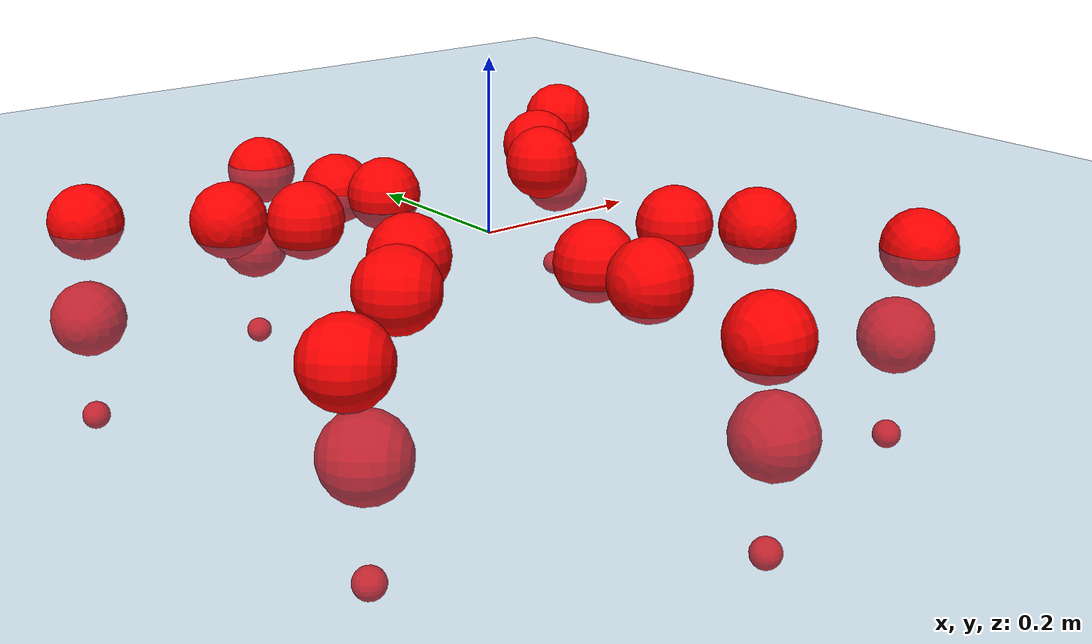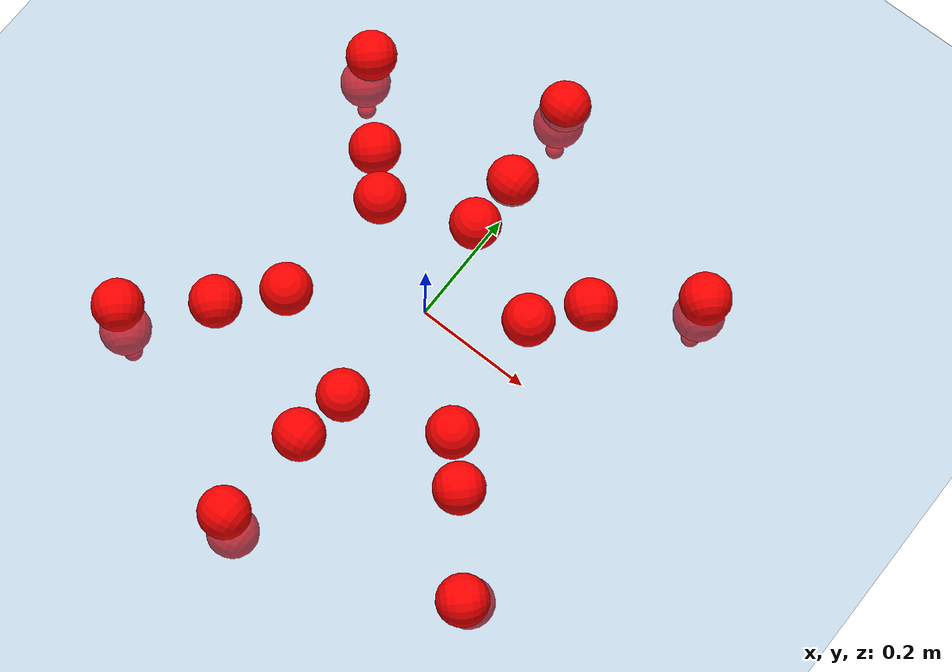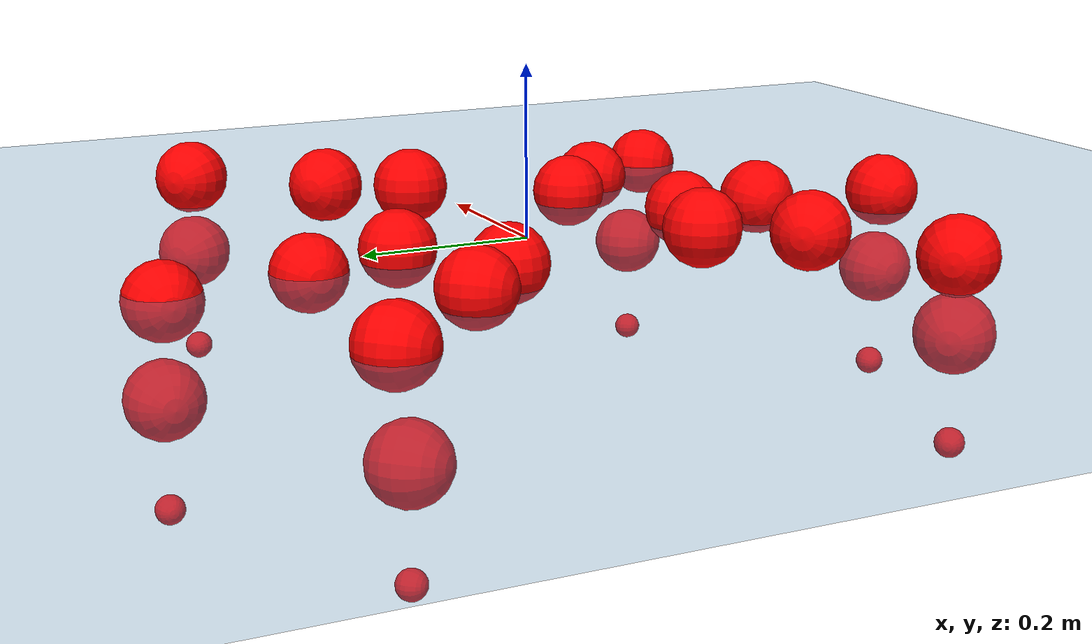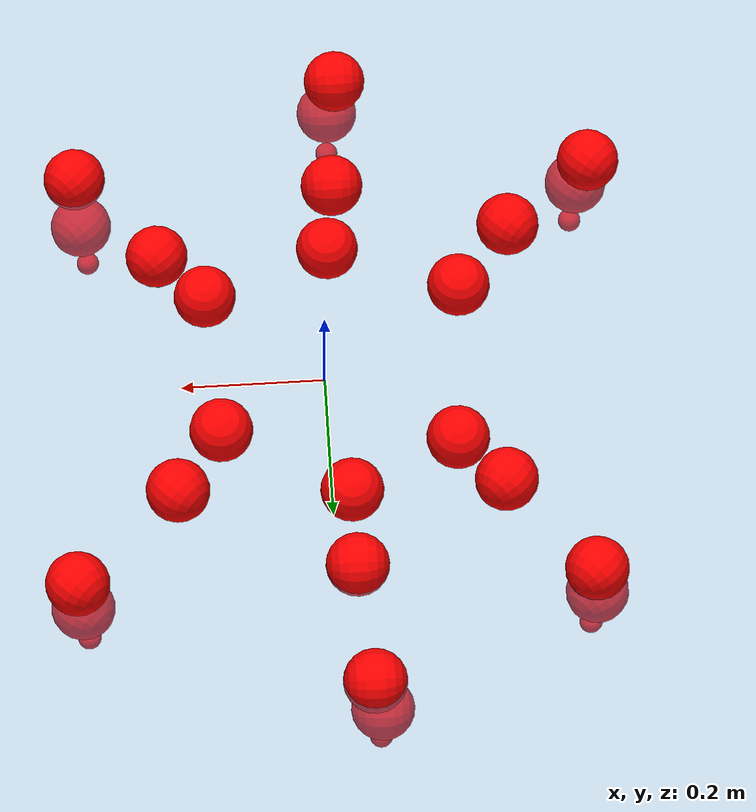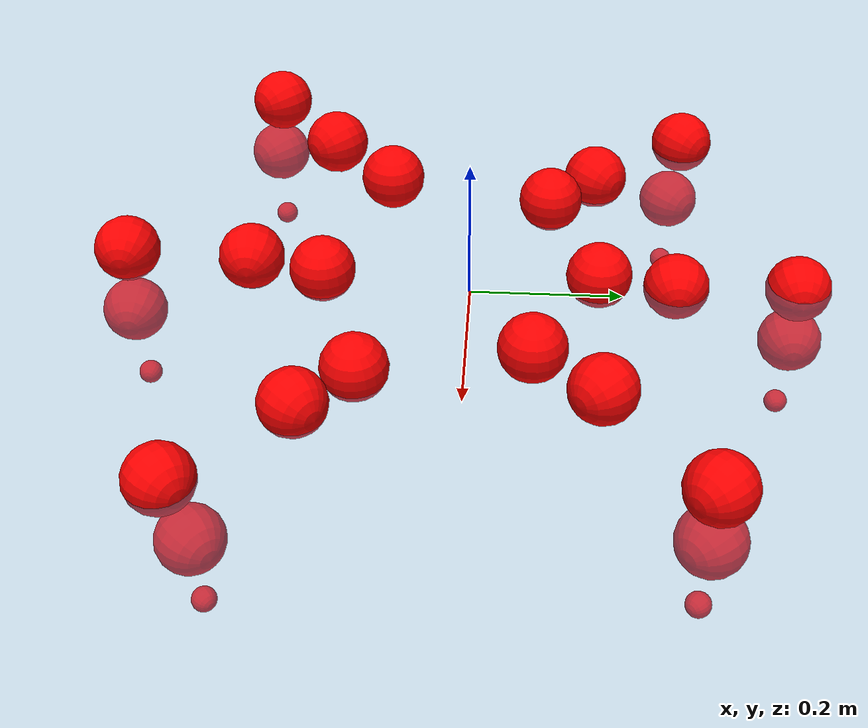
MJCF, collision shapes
<mujoco model="Golem">
  <compiler angle="radian" assetdir="assets" balanceinertia="true" inertiafromgeom="false"/>

  <option timestep="0.005" density="1.2" viscosity="2e-05"/>

  <size nkey="1"/>

  <visual>
    <quality shadowsize="8192"/>
    <map shadowclip="0.5"/>
  </visual>

  <default>
    <default class="/">
      <joint armature="0.01" damping="0.01" frictionloss="0.01"/>
      <geom contype="0" conaffinity="0" group="1" solref="-1000 -80"/>
      <site size="0.01 0.005 0.005" group="5"/>
      <general forcelimited="true" biastype="affine" gainprm="25" biasprm="0 -25 -0.5"/>
      <default class="visual">
        <geom type="mesh" group="2"/>
      </default>
      <default class="collision">
        <geom group="3"/>
      </default>
      <default class="foot">
        <geom size="0.01 0 0" condim="6" group="4" priority="1" solimp="0.015 1 0.01"/>
      </default>
      <default class="reward_collision_sphere">
        <geom group="5" rgba="1 0 0 1"/>
      </default>
    </default>
  </default>

  <asset>
    <texture type="skybox" colorspace="auto" name="//unnamed_texture_0" builtin="gradient" rgb1="0.95 0.95 0.95" rgb2="0.95 0.95 0.95" width="100" height="600"/>
    <texture type="2d" colorspace="auto" name="texplane" builtin="checker" rgb1="0.345 0.575 0.748" rgb2="0.345 0.575 0.748" markrgb="1 1 1" width="512" height="512"/>
    <material name="MatPlane" class="/" texture="texplane" texuniform="true" texrepeat="2 2" specular="0.9"/>
    <mesh name="body" class="/" file="body.stl" scale="0.001 0.001 0.001"/>
    <mesh name="coxa" class="/" file="coxa.stl" scale="0.001 0.001 0.001"/>
    <mesh name="femur" class="/" file="femur.stl" scale="0.001 0.001 0.001"/>
    <mesh name="tibia" class="/" file="tibia.stl" scale="0.001 0.001 0.001"/>
    <mesh name="tarsus" class="/" file="tarsus.stl" scale="0.001 0.001 0.001"/>
  </asset>

  <worldbody>
    <geom name="floor" class="/" size="100 100 0.125" type="plane" group="0" material="MatPlane"/>
    <light name="toplight_shadow" class="/" pos="0 0 5" dir="0.0990148 0.0990148 -0.990148" type="directional" ambient="0.04 0.04 0.04" diffuse="0.55 0.55 0.55" specular="0.12 0.12 0.12"/>
    <light name="toplight_fill" class="/" pos="0 0 5" dir="0.0990148 0.0990148 -0.990148" type="directional" castshadow="false" ambient="0.04 0.04 0.04" diffuse="0.3 0.3 0.3" specular="0.08 0.08 0.08"/>
    <body name="trunk" pos="-0.0151676 -0.0100175 -0.00933985" quat="1 -0.000135407 7.73112e-05 -0.000161566">
      <inertial pos="-0.00567157 -0.00445606 -0.0045477" quat="0.99998 0.00247492 -0.00563547 0.00162035" mass="5.01252" diaginertia="0.0250391 0.110163 0.000494988"/>
      <joint name="//unnamed_joint_0" type="free"/>
      <geom name="//unnamed_geom_1" class="/" pos="0 0 0.0352039" quat="1 0 0 0" type="mesh" rgba="0.9 0.9 0.9 1" mesh="body"/>
      <site name="imu" class="/" pos="0.0763575 -0.0690505 0.0242722" size="0.010957"/>
      <camera name="track" class="/" pos="0 -3.20155 0" quat="0.707107 0.707107 0 0" mode="trackcom"/>
      <camera name="ego_camera" class="/" pos="0.147713 0 0.0550061" quat="-0.5 -0.5 0.5 0.5"/>
      <body name="coxa_RR" pos="-0.202819 -0.131863 0.0504974" quat="0.382624 5.14779e-05 5.87122e-05 -0.923904">
        <inertial pos="0.000205085 0.015874 0.00799963" quat="0.998359 -0.0109637 -0.0512728 0.0230369" mass="0.297137" diaginertia="0.0203675 0.113333 0.00054657"/>
        <joint name="coxa_joint_RR" class="/" pos="0 0 0" axis="-0.0143543 0.0381612 -0.999168" stiffness="0.0693208" range="-3.14939 3.13561" armature="0.0175328" damping="0.0423976" frictionloss="0.010733"/>
        <geom name="//unnamed_geom_2" class="/" type="mesh" rgba="0.2 0.2 0.2 1" mesh="coxa"/>
        <geom name="//unnamed_geom_3" class="reward_collision_sphere" size="0.0438279" pos="-0.0340877 0 0"/>
        <body name="femur_RR" pos="0.0821299 0.0088904 0.00387236" quat="0.500004 -0.499955 0.499968 0.500073">
          <inertial pos="0.00865741 0.0073842 0.000955606" quat="0.999502 0.0109387 0.0295132 0.0022496" mass="0.261399" diaginertia="0.019088 0.0969186 0.000397337"/>
          <joint name="femur_joint_RR" class="/" pos="0 0 0" axis="-0.0180468 -0.0233842 -0.999564" stiffness="0.0720086" range="-2.86585 3.36492" armature="0.0139972" damping="0.00951107" frictionloss="0.00379201"/>
          <geom name="//unnamed_geom_4" class="/" type="mesh" rgba="0.9 0.9 0.9 1" mesh="femur"/>
          <geom name="//unnamed_geom_5" class="reward_collision_sphere" size="0.0438279"/>
          <body name="tibia_RR" pos="0.0108505 -0.158288 -0.0160967" quat="-0.00247185 0.999969 -0.00595502 0.0044544">
            <inertial pos="0.0137164 0.00459414 0.000691189" quat="0.999984 0.000372377 0.00418947 -0.00387922" mass="0.250524" diaginertia="0.0221001 0.127014 0.000641235"/>
            <joint name="tibia_joint_RR" class="/" pos="0 0 0" axis="0.0304728 -0.0602673 0.997717" stiffness="0.00298124" range="-3.30349 2.93305" armature="0.0131356" damping="0.0243663" frictionloss="0.0108838"/>
            <geom name="//unnamed_geom_6" class="/" type="mesh" rgba="0.2 0.2 0.2 1" mesh="tibia"/>
            <geom name="//unnamed_geom_7" class="reward_collision_sphere" size="0.0438279"/>
            <body name="tarsus_RR" pos="0.0874209 -0.00260823 -0.0132623" quat="1 0.000148301 -3.89278e-05 -0.00034711">
              <inertial pos="0.0546231 0.000547902 -0.00849864" quat="0.47929 0.506402 0.496804 0.516745" mass="0.267198" diaginertia="0.0174215 0.0932203 0.000515322"/>
              <joint name="tarsus_joint_RR" class="/" pos="0 0 0" axis="0.00191786 -0.000483658 0.999998" stiffness="0.00034026" range="-2.8674 2.92559" armature="0.0141164" damping="0.0232703" frictionloss="0.0157025"/>
              <geom name="//unnamed_geom_8" class="/" type="mesh" rgba="0.9 0.9 0.9 1" mesh="tarsus"/>
              <geom name="foot_1" class="foot" size="0.0110731" pos="0.127261 0 0" quat="0 -0.707107 0 0.707107"/>
              <geom name="//unnamed_geom_10" class="reward_collision_sphere" size="0.0438279"/>
              <geom name="//unnamed_geom_11" class="reward_collision_sphere" size="0.0164354" pos="0.122147 0 0"/>
              <site name="foot_1" class="foot" pos="0.127261 0 0" quat="0 -0.707107 0 0.707107" size="0.010957"/>
            </body>
          </body>
        </body>
      </body>
      <body name="coxa_RM" pos="0.00104682 -0.220061 0.0287532" quat="0.710252 0.000392661 -0.00274722 -0.703942">
        <inertial pos="-0.0117013 0.000397107 0.00841699" quat="0.999134 0.0283427 0.00765647 -0.029482" mass="0.287201" diaginertia="0.0209419 0.12448 0.000430699"/>
        <joint name="coxa_joint_RM" class="/" pos="0 0 0" axis="-0.00934174 -0.0225221 -0.999703" range="-2.99393 3.04945" armature="0.0105904" damping="0.0640845" frictionloss="0.0202463"/>
        <geom name="//unnamed_geom_12" class="/" type="mesh" rgba="0.2 0.2 0.2 1" mesh="coxa"/>
        <geom name="//unnamed_geom_13" class="reward_collision_sphere" size="0.0438279" pos="-0.0340877 0 0"/>
        <body name="femur_RM" pos="0.0614606 -0.0131014 0.00665009" quat="0.495773 -0.496877 0.503253 0.504043">
          <inertial pos="-0.00522155 0.00776328 -0.000741397" quat="0.999394 -0.0117903 0.0324545 0.00448183" mass="0.214945" diaginertia="0.0152559 0.097686 0.000402362"/>
          <joint name="femur_joint_RM" class="/" pos="0 0 0" axis="-0.0492663 0.00943807 -0.998741" range="-3.19186 3.12843" armature="0.0156508" damping="0" frictionloss="0.011349"/>
          <geom name="//unnamed_geom_14" class="/" type="mesh" rgba="0.9 0.9 0.9 1" mesh="femur"/>
          <geom name="//unnamed_geom_15" class="reward_collision_sphere" size="0.0438279"/>
          <body name="tibia_RM" pos="0.00308878 -0.171423 -0.0156463" quat="-0.000288146 1 0.000325119 -0.000697714">
            <inertial pos="-0.0110475 0.0155994 -0.000996435" quat="0.997551 0.0535258 0.0401506 -0.0203567" mass="0.335705" diaginertia="0.0208076 0.0915722 0.000575805"/>
            <joint name="tibia_joint_RM" class="/" pos="0 0 0" axis="-0.00342522 0.00231004 0.999991" range="-2.85908 2.80152" armature="0.011786" damping="0.0124542" frictionloss="0.00812881"/>
            <geom name="//unnamed_geom_16" class="/" type="mesh" rgba="0.2 0.2 0.2 1" mesh="tibia"/>
            <geom name="//unnamed_geom_17" class="reward_collision_sphere" size="0.0438279"/>
            <body name="tarsus_RM" pos="0.0998121 0.00444783 -0.0107557" quat="1 0.000138371 -0.000111093 2.84475e-05">
              <inertial pos="0.0633368 0.0108935 -0.0120303" quat="0.553543 0.464915 0.516244 0.459278" mass="0.21003" diaginertia="0.021956 0.117058 0.000575396"/>
              <joint name="tarsus_joint_RM" class="/" pos="0 0 0" axis="0.00862288 -0.00529023 0.999949" stiffness="0.0563056" range="-3.35037 3.25656" armature="0.00650179" damping="0.00711933" frictionloss="0.0111276"/>
              <geom name="//unnamed_geom_18" class="/" type="mesh" rgba="0.9 0.9 0.9 1" mesh="tarsus"/>
              <geom name="foot_2" class="foot" size="0.00861889" pos="0.127261 0 0" quat="0 -0.707107 0 0.707107"/>
              <geom name="//unnamed_geom_20" class="reward_collision_sphere" size="0.0438279"/>
              <geom name="//unnamed_geom_21" class="reward_collision_sphere" size="0.0164354" pos="0.122147 0 0"/>
              <site name="foot_2" class="foot" pos="0.127261 0 0" quat="0 -0.707107 0 0.707107" size="0.010957"/>
            </body>
          </body>
        </body>
      </body>
      <body name="coxa_RF" pos="0.200445 -0.148279 0.0214715" quat="0.923769 0.000776365 0.000404361 -0.38295">
        <inertial pos="0.00636394 -0.00949777 -0.00136066" quat="0.999991 0.00167431 0.00290545 0.00269859" mass="0.247863" diaginertia="0.0188077 0.091069 0.000525866"/>
        <joint name="coxa_joint_RF" class="/" pos="0 0 0" axis="-0.0089456 -0.00472541 -0.999949" stiffness="0.000688611" range="-3.16569 3.02982" armature="0.00372597" damping="0.00349867" frictionloss="0.00976332"/>
        <geom name="//unnamed_geom_22" class="/" type="mesh" rgba="0.2 0.2 0.2 1" mesh="coxa"/>
        <geom name="//unnamed_geom_23" class="reward_collision_sphere" size="0.0438279" pos="-0.0340877 0 0"/>
        <body name="femur_RF" pos="0.0586128 -0.000463357 0.00142693" quat="0.499544 -0.497546 0.500479 0.502419">
          <inertial pos="-0.00773747 0.0106582 -0.00145467" quat="0.999206 -0.0341298 -0.0167815 0.0118574" mass="0.294307" diaginertia="0.0187248 0.131269 0.000456364"/>
          <joint name="femur_joint_RF" class="/" pos="0 0 0" axis="0.00195225 -0.000170851 -0.999998" range="-2.82954 3.01087" armature="0.0189752" damping="0.0110867" frictionloss="0.00419997"/>
          <geom name="//unnamed_geom_24" class="/" type="mesh" rgba="0.9 0.9 0.9 1" mesh="femur"/>
          <geom name="//unnamed_geom_25" class="reward_collision_sphere" size="0.0438279"/>
          <body name="tibia_RF" pos="0.0123882 -0.17723 -0.0161464" quat="0.000151607 1 0.000413822 0.000320951">
            <inertial pos="0.0159942 0.00206827 0.00476685" quat="0.999991 -0.00398066 -0.000823808 -0.0010517" mass="0.202182" diaginertia="0.0200105 0.0858141 0.000460677"/>
            <joint name="tibia_joint_RF" class="/" pos="0 0 0" axis="0.0763896 -0.0135134 0.996986" range="-3.02827 3.45152" armature="0.0145222" damping="0.00369389" frictionloss="0.0105607"/>
            <geom name="//unnamed_geom_26" class="/" type="mesh" rgba="0.2 0.2 0.2 1" mesh="tibia"/>
            <geom name="//unnamed_geom_27" class="reward_collision_sphere" size="0.0438279"/>
            <body name="tarsus_RF" pos="0.109755 -0.0145319 -0.0132903" quat="0.999972 0.000352434 -0.00741169 0.000591897">
              <inertial pos="0.0675298 -0.00466319 -0.00125704" quat="0.505546 0.494813 0.500154 0.499429" mass="0.274492" diaginertia="0.0180767 0.1123 0.000445586"/>
              <joint name="tarsus_joint_RF" class="/" pos="0 0 0" axis="0.047982 -0.0191108 0.998665" stiffness="0.0370887" range="-2.98948 3.24794" armature="0.00582349" damping="0.000723391" frictionloss="0.0158696"/>
              <geom name="//unnamed_geom_28" class="/" type="mesh" rgba="0.9 0.9 0.9 1" mesh="tarsus"/>
              <geom name="foot_3" class="foot" size="0.00605244" pos="0.127261 0 0" quat="0 -0.707107 0 0.707107"/>
              <geom name="//unnamed_geom_30" class="reward_collision_sphere" size="0.0438279"/>
              <geom name="//unnamed_geom_31" class="reward_collision_sphere" size="0.0164354" pos="0.122147 0 0"/>
              <site name="foot_3" class="foot" pos="0.127261 0 0" quat="0 -0.707107 0 0.707107" size="0.010957"/>
            </body>
          </body>
        </body>
      </body>
      <body name="coxa_LR" pos="-0.186498 0.139213 0.0317134" quat="0.383208 -0.0013806 -3.2941e-05 0.923661">
        <inertial pos="0.014645 -0.00896355 0.0165354" quat="0.99694 0.0465336 -0.0391887 -0.0490951" mass="0.256015" diaginertia="0.0159359 0.0709778 0.000395194"/>
        <joint name="coxa_joint_LR" class="/" pos="0 0 0" axis="-0.0542244 0.0512693 -0.997212" range="-3.02104 3.32441" armature="0.0164022" damping="0.0308362" frictionloss="0.0178894"/>
        <geom name="//unnamed_geom_32" class="/" type="mesh" rgba="0.2 0.2 0.2 1" mesh="coxa"/>
        <geom name="//unnamed_geom_33" class="reward_collision_sphere" size="0.0438279" pos="-0.0340877 0 0"/>
        <body name="femur_LR" pos="0.0552425 -0.00154752 -0.00343735" quat="0.499911 -0.500211 0.49989 0.499988">
          <inertial pos="0.00734679 -0.00264874 0.00270437" quat="0.998863 -0.0145837 0.0309187 0.0332388" mass="0.262559" diaginertia="0.0186505 0.0872772 0.000512295"/>
          <joint name="femur_joint_LR" class="/" pos="0 0 0" axis="-0.0389832 -0.0321632 0.998722" range="-3.26338 3.1823" armature="0.00863851" damping="0" frictionloss="0.019793"/>
          <geom name="//unnamed_geom_34" class="/" type="mesh" rgba="0.9 0.9 0.9 1" mesh="femur"/>
          <geom name="//unnamed_geom_35" class="reward_collision_sphere" size="0.0438279"/>
          <body name="tibia_LR" pos="0.0119792 -0.173341 -0.0137221" quat="-0.00677205 0.999974 0.00239613 -0.00045521">
            <inertial pos="-0.00181496 -0.00179054 0.000251756" quat="0.999798 -0.00937469 -0.0145522 0.0101649" mass="0.214569" diaginertia="0.0164526 0.100496 0.000465547"/>
            <joint name="tibia_joint_LR" class="/" pos="0 0 0" axis="-0.00106825 0.0475923 -0.998866" range="-2.95744 3.39076" armature="0.0121765" damping="0.0246039" frictionloss="0.00967731"/>
            <geom name="//unnamed_geom_36" class="/" type="mesh" rgba="0.2 0.2 0.2 1" mesh="tibia"/>
            <geom name="//unnamed_geom_37" class="reward_collision_sphere" size="0.0438279"/>
            <body name="tarsus_LR" pos="0.113769 0.00198873 -0.012344" quat="0.999972 -0.00160859 0.00106695 0.00720559">
              <inertial pos="0.0522093 -5.10205e-05 0.01587" quat="0.500023 0.500001 0.500078 0.499899" mass="0.273664" diaginertia="0.0174146 0.11066 0.00047596"/>
              <joint name="tarsus_joint_LR" class="/" pos="0 0 0" axis="-0.0495473 0.0492011 -0.997559" stiffness="0.00738227" range="-2.87517 3.40328" armature="0.00938609" damping="0.0410028" frictionloss="0.00715034"/>
              <geom name="//unnamed_geom_38" class="/" type="mesh" rgba="0.9 0.9 0.9 1" mesh="tarsus"/>
              <geom name="foot_4" class="foot" size="0.00688996" pos="0.127261 0 0" quat="0.707107 0 -0.707107 0"/>
              <geom name="//unnamed_geom_40" class="reward_collision_sphere" size="0.0438279"/>
              <geom name="//unnamed_geom_41" class="reward_collision_sphere" size="0.0164354" pos="0.122147 0 0"/>
              <site name="foot_4" class="foot" pos="0.127261 0 0" quat="0.707107 0 -0.707107 0" size="0.010957"/>
            </body>
          </body>
        </body>
      </body>
      <body name="coxa_LM" pos="-0.0124816 0.214162 0.0218893" quat="0.709289 0.00071902 0.00286219 0.704911">
        <inertial pos="-0.00560076 0.00694408 0.000660038" quat="0.998578 -0.0413492 0.0131325 0.0309883" mass="0.286678" diaginertia="0.0230313 0.109545 0.000542285"/>
        <joint name="coxa_joint_LM" class="/" pos="0 0 0" axis="0.00915059 0.0155525 -0.999837" stiffness="0.0522699" range="-3.40205 3.10019" armature="0.00621382" damping="0" frictionloss="0.00406867"/>
        <geom name="//unnamed_geom_42" class="/" type="mesh" rgba="0.2 0.2 0.2 1" mesh="coxa"/>
        <geom name="//unnamed_geom_43" class="reward_collision_sphere" size="0.0438279" pos="-0.0340877 0 0"/>
        <body name="femur_LM" pos="0.0692749 0.00170459 -0.0157193" quat="0.500266 -0.504567 0.497192 0.497942">
          <inertial pos="-0.00864239 0.0132083 -0.0163337" quat="0.997156 0.0385348 -0.0606257 -0.0228079" mass="0.244131" diaginertia="0.0155548 0.118022 0.000424496"/>
          <joint name="femur_joint_LM" class="/" pos="0 0 0" axis="0.032264 -0.0419114 0.9986" range="-3.12335 3.39352" armature="0.00606857" damping="0" frictionloss="0.0110996"/>
          <geom name="//unnamed_geom_44" class="/" type="mesh" rgba="0.9 0.9 0.9 1" mesh="femur"/>
          <geom name="//unnamed_geom_45" class="reward_collision_sphere" size="0.0438279"/>
          <body name="tibia_LM" pos="0.00930295 -0.164366 0.0136213" quat="0.00631799 0.999967 -0.00395232 0.00336819">
            <inertial pos="-0.00488441 0.0169677 -0.00653105" quat="0.998533 0.0126797 0.0121413 -0.0512287" mass="0.287401" diaginertia="0.0173949 0.0868666 0.000462718"/>
            <joint name="tibia_joint_LM" class="/" pos="0 0 0" axis="0.000139447 -0.00289124 -0.999996" stiffness="0.0175523" range="-3.14707 3.01156" armature="0.00387423" damping="0.0827767" frictionloss="0.0160543"/>
            <geom name="//unnamed_geom_46" class="/" type="mesh" rgba="0.2 0.2 0.2 1" mesh="tibia"/>
            <geom name="//unnamed_geom_47" class="reward_collision_sphere" size="0.0438279"/>
            <body name="tarsus_LM" pos="0.103525 0.00473647 -0.0104619" quat="0.999964 0.0026405 -0.00532033 -0.00600796">
              <inertial pos="0.079513 0.00127373 0.00925386" quat="0.499796 0.500337 0.499939 0.499928" mass="0.272598" diaginertia="0.0249313 0.134249 0.000515939"/>
              <joint name="tarsus_joint_LM" class="/" pos="0 0 0" axis="0.00197824 0.000201337 -0.999998" stiffness="0.00563064" range="-3.46425 3.03058" armature="0.00338641" damping="0.0922607" frictionloss="0.00678278"/>
              <geom name="//unnamed_geom_48" class="/" type="mesh" rgba="0.9 0.9 0.9 1" mesh="tarsus"/>
              <geom name="foot_5" class="foot" size="0.0079682" pos="0.127261 0 0" quat="0.707107 0 -0.707107 0"/>
              <geom name="//unnamed_geom_50" class="reward_collision_sphere" size="0.0438279"/>
              <geom name="//unnamed_geom_51" class="reward_collision_sphere" size="0.0164354" pos="0.122147 0 0"/>
              <site name="foot_5" class="foot" pos="0.127261 0 0" quat="0.707107 0 -0.707107 0" size="0.010957"/>
            </body>
          </body>
        </body>
      </body>
      <body name="coxa_LF" pos="0.185971 0.117681 0.0507836" quat="0.923437 -0.000156743 0.000288349 0.38375">
        <inertial pos="0.00227372 -0.00253777 0.00744618" quat="0.998419 0.0494409 -0.0254935 0.00813493" mass="0.35242" diaginertia="0.0220382 0.125 0.000628224"/>
        <joint name="coxa_joint_LF" class="/" pos="0 0 0" axis="-0.00580228 -0.0103275 -0.99993" stiffness="0.00265966" range="-2.97517 2.816" armature="0.00396581" damping="0.0920688" frictionloss="0.0169864"/>
        <geom name="//unnamed_geom_52" class="/" type="mesh" rgba="0.2 0.2 0.2 1" mesh="coxa"/>
        <geom name="//unnamed_geom_53" class="reward_collision_sphere" size="0.0438279" pos="-0.0340877 0 0"/>
        <body name="femur_LF" pos="0.0698055 0.01489 -0.00314151" quat="0.505576 -0.50079 0.495936 0.497644">
          <inertial pos="-0.0159475 0.000505892 -0.00217497" quat="0.999592 0.0251698 0.0048129 -0.0126277" mass="0.298258" diaginertia="0.0205667 0.113798 0.000613112"/>
          <joint name="femur_joint_LF" class="/" pos="0 0 0" axis="0.00400333 -0.00815632 0.999959" stiffness="0.00113416" range="-3.34821 3.04829" armature="0.00392461" damping="0" frictionloss="0.0139648"/>
          <geom name="//unnamed_geom_54" class="/" type="mesh" rgba="0.9 0.9 0.9 1" mesh="femur"/>
          <geom name="//unnamed_geom_55" class="reward_collision_sphere" size="0.0438279"/>
          <body name="tibia_LF" pos="0.00725696 -0.18724 -0.0103555" quat="-0.00116994 0.999999 0.000583258 -0.000189099">
            <inertial pos="0.00150643 -0.0119034 -0.0081137" quat="0.999555 -0.0201221 0.00604886 -0.0211693" mass="0.287955" diaginertia="0.0201635 0.100826 0.000502167"/>
            <joint name="tibia_joint_LF" class="/" pos="0 0 0" axis="-0.0153769 -0.0132363 -0.999794" stiffness="0.0484608" range="-3.15794 3.08949" armature="0.0171505" damping="0.0609115" frictionloss="0.00604336"/>
            <geom name="//unnamed_geom_56" class="/" type="mesh" rgba="0.2 0.2 0.2 1" mesh="tibia"/>
            <geom name="//unnamed_geom_57" class="reward_collision_sphere" size="0.0438279"/>
            <body name="tarsus_LF" pos="0.0937634 -0.000962773 -0.00067773" quat="0.999971 0.00318472 -0.00355586 -0.00587961">
              <inertial pos="0.0681633 -0.00153343 0.00868041" quat="0.488727 0.548602 0.473709 0.485573" mass="0.215088" diaginertia="0.017021 0.0819541 0.000414393"/>
              <joint name="tarsus_joint_LF" class="/" pos="0 0 0" axis="-0.0441208 0.00343776 -0.99902" range="-2.89372 2.96571" armature="0.011347" damping="0.0898555" frictionloss="0.012225"/>
              <geom name="//unnamed_geom_58" class="/" type="mesh" rgba="0.9 0.9 0.9 1" mesh="tarsus"/>
              <geom name="foot_6" class="foot" size="0.0105562" pos="0.127261 0 0" quat="0.707107 0 -0.707107 0"/>
              <geom name="//unnamed_geom_60" class="reward_collision_sphere" size="0.0438279"/>
              <geom name="//unnamed_geom_61" class="reward_collision_sphere" size="0.0164354" pos="0.122147 0 0"/>
              <site name="foot_6" class="foot" pos="0.127261 0 0" quat="0.707107 0 -0.707107 0" size="0.010957"/>
            </body>
          </body>
        </body>
      </body>
    </body>
  </worldbody>

  <contact>
    <pair class="/" geom1="floor" geom2="foot_1" name="//unnamed_contact_0"/>
    <pair class="/" geom1="floor" geom2="foot_2" name="//unnamed_contact_1"/>
    <pair class="/" geom1="floor" geom2="foot_3" name="//unnamed_contact_2"/>
    <pair class="/" geom1="floor" geom2="foot_4" name="//unnamed_contact_3"/>
    <pair class="/" geom1="floor" geom2="foot_5" name="//unnamed_contact_4"/>
    <pair class="/" geom1="floor" geom2="foot_6" name="//unnamed_contact_5"/>
  </contact>

  <actuator>
    <general name="coxa_joint_RR" class="/" joint="coxa_joint_RR" forcerange="-7.12805 7.12805" gainprm="23.3624" biasprm="0 -23.3624 -0.590108"/>
    <general name="femur_joint_RR" class="/" joint="femur_joint_RR" forcerange="-7.75565 7.75565" gainprm="23.3624" biasprm="0 -23.3624 -0.590108"/>
    <general name="tibia_joint_RR" class="/" joint="tibia_joint_RR" forcerange="-7.98734 7.98734" gainprm="23.3624" biasprm="0 -23.3624 -0.590108"/>
    <general name="tarsus_joint_RR" class="/" joint="tarsus_joint_RR" forcerange="-4.36685 4.36685" gainprm="23.3624" biasprm="0 -23.3624 -0.590108"/>
    <general name="coxa_joint_RM" class="/" joint="coxa_joint_RM" forcerange="-12.6898 12.6898" gainprm="23.3624" biasprm="0 -23.3624 -0.590108"/>
    <general name="femur_joint_RM" class="/" joint="femur_joint_RM" forcerange="-9.40104 9.40104" gainprm="23.3624" biasprm="0 -23.3624 -0.590108"/>
    <general name="tibia_joint_RM" class="/" joint="tibia_joint_RM" forcerange="-11.0976 11.0976" gainprm="23.3624" biasprm="0 -23.3624 -0.590108"/>
    <general name="tarsus_joint_RM" class="/" joint="tarsus_joint_RM" forcerange="-7.1767 7.1767" gainprm="23.3624" biasprm="0 -23.3624 -0.590108"/>
    <general name="coxa_joint_RF" class="/" joint="coxa_joint_RF" forcerange="-12.4387 12.4387" gainprm="23.3624" biasprm="0 -23.3624 -0.590108"/>
    <general name="femur_joint_RF" class="/" joint="femur_joint_RF" forcerange="-10.8509 10.8509" gainprm="23.3624" biasprm="0 -23.3624 -0.590108"/>
    <general name="tibia_joint_RF" class="/" joint="tibia_joint_RF" forcerange="-12.8538 12.8538" gainprm="23.3624" biasprm="0 -23.3624 -0.590108"/>
    <general name="tarsus_joint_RF" class="/" joint="tarsus_joint_RF" forcerange="-5.26418 5.26418" gainprm="23.3624" biasprm="0 -23.3624 -0.590108"/>
    <general name="coxa_joint_LR" class="/" joint="coxa_joint_LR" forcerange="-8.2037 8.2037" gainprm="23.3624" biasprm="0 -23.3624 -0.590108"/>
    <general name="femur_joint_LR" class="/" joint="femur_joint_LR" forcerange="-7.51157 7.51157" gainprm="23.3624" biasprm="0 -23.3624 -0.590108"/>
    <general name="tibia_joint_LR" class="/" joint="tibia_joint_LR" forcerange="-8.48249 8.48249" gainprm="23.3624" biasprm="0 -23.3624 -0.590108"/>
    <general name="tarsus_joint_LR" class="/" joint="tarsus_joint_LR" forcerange="-5.89682 5.89682" gainprm="23.3624" biasprm="0 -23.3624 -0.590108"/>
    <general name="coxa_joint_LM" class="/" joint="coxa_joint_LM" forcerange="-4.10245 4.10245" gainprm="23.3624" biasprm="0 -23.3624 -0.590108"/>
    <general name="femur_joint_LM" class="/" joint="femur_joint_LM" forcerange="-8.20592 8.20592" gainprm="23.3624" biasprm="0 -23.3624 -0.590108"/>
    <general name="tibia_joint_LM" class="/" joint="tibia_joint_LM" forcerange="-8.78423 8.78423" gainprm="23.3624" biasprm="0 -23.3624 -0.590108"/>
    <general name="tarsus_joint_LM" class="/" joint="tarsus_joint_LM" forcerange="-7.49011 7.49011" gainprm="23.3624" biasprm="0 -23.3624 -0.590108"/>
    <general name="coxa_joint_LF" class="/" joint="coxa_joint_LF" forcerange="-12.9489 12.9489" gainprm="23.3624" biasprm="0 -23.3624 -0.590108"/>
    <general name="femur_joint_LF" class="/" joint="femur_joint_LF" forcerange="-7.7454 7.7454" gainprm="23.3624" biasprm="0 -23.3624 -0.590108"/>
    <general name="tibia_joint_LF" class="/" joint="tibia_joint_LF" forcerange="-6.49003 6.49003" gainprm="23.3624" biasprm="0 -23.3624 -0.590108"/>
    <general name="tarsus_joint_LF" class="/" joint="tarsus_joint_LF" forcerange="-10.8683 10.8683" gainprm="23.3624" biasprm="0 -23.3624 -0.590108"/>
  </actuator>

  <sensor>
    <gyro site="imu" name="imu_angular_velocity"/>
    <velocimeter site="imu" name="imu_linear_velocity"/>
    <framelinvel objtype="site" objname="foot_1" name="foot_1_global_linear_velocity"/>
    <framelinvel objtype="site" objname="foot_2" name="foot_2_global_linear_velocity"/>
    <framelinvel objtype="site" objname="foot_3" name="foot_3_global_linear_velocity"/>
    <framelinvel objtype="site" objname="foot_4" name="foot_4_global_linear_velocity"/>
    <framelinvel objtype="site" objname="foot_5" name="foot_5_global_linear_velocity"/>
    <framelinvel objtype="site" objname="foot_6" name="foot_6_global_linear_velocity"/>
  </sensor>

  <keyframe>
    <key name="home" qpos="0 0 0.1457 1 0 0 0 0 0 0 0 0 0 0 0 0 0 0 0 0 0 0 0 0 0 0 0 0 0 0 0"/>
  </keyframe>
</mujoco>
